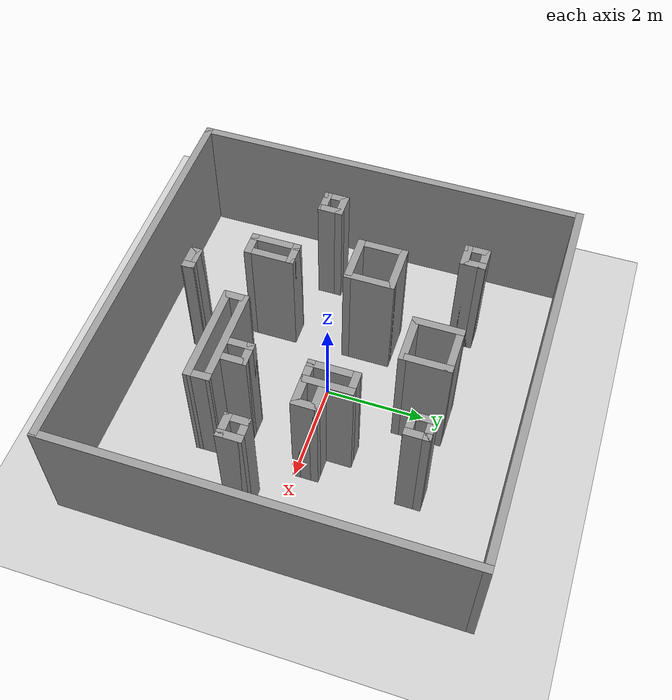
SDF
<sdf version="1.6">
 <world name="default">
  <light name="sun" type="directional">
   <pose>0 0 10 0 -0 0</pose>
   <diffuse>0.8 0.8 0.8 1</diffuse>
   <specular>0.1 0.1 0.1 1</specular>
   <attenuation>
    <range>1000</range>
    <constant>0.9</constant>
    <linear>0.01</linear>
    <quadratic>0.001</quadratic>
   </attenuation>
   <direction>-0.5 0.5 -1</direction>
  </light>
  <model name="ground_plane">
   <static>1</static>
   <link name="link">
    <collision name="collision">
     <geometry><plane><normal>0 0 1</normal><size>100 100</size></plane></geometry>
     <surface><friction><ode><mu>100</mu><mu2>50</mu2></ode></friction></surface>
    </collision>
    <visual name="visual">
     <cast_shadows>0</cast_shadows>
     <geometry><plane><normal>0 0 1</normal><size>100 100</size></plane></geometry>
     <material>
      <script><uri>file://media/materials/scripts/gazebo.material</uri><name>Gazebo/Grey</name></script>
     </material>
    </visual>
   </link>
  </model>
  <gravity>0 0 -9.8</gravity>
  <magnetic_field>6e-06 2.3e-05 -4.2e-05</magnetic_field>
  <atmosphere type="adiabatic"/>
  <physics name="default_physics" default="0" type="ode">
   <max_step_size>0.001</max_step_size>
   <real_time_factor>1</real_time_factor>
   <real_time_update_rate>1000</real_time_update_rate>
  </physics>
  <scene><ambient>0.4 0.4 0.4 1</ambient><background>0.7 0.7 0.7 1</background><shadows>1</shadows></scene>
  <spherical_coordinates>
   <surface_model>EARTH_WGS84</surface_model>
   <latitude_deg>0</latitude_deg>
   <longitude_deg>0</longitude_deg>
   <elevation>0</elevation>
   <heading_deg>0</heading_deg>
  </spherical_coordinates>
  <model name="maze2">
   <link name="Wall_10">
    <collision name="Wall_10_Collision">
     <geometry><box><size>1 0.15 2.5</size></box></geometry>
     <pose>0 0 1.25 0 -0 0</pose>
    </collision>
    <visual name="Wall_10_Visual">
     <pose>0 0 1.25 0 -0 0</pose>
     <geometry><box><size>1 0.15 2.5</size></box></geometry>
     <material>
      <script><uri>file://media/materials/scripts/gazebo.material</uri><name>Gazebo/Grey</name></script>
      <ambient>1 1 1 1</ambient>
     </material>
     <meta><layer>0</layer></meta>
    </visual>
    <pose>-1.407 -1.51762 0 0 0 -1.5708</pose>
   </link>
   <link name="Wall_12">
    <collision name="Wall_12_Collision">
     <geometry><box><size>0.5 0.15 2.5</size></box></geometry>
     <pose>0 0 1.25 0 -0 0</pose>
    </collision>
    <visual name="Wall_12_Visual">
     <pose>0 0 1.25 0 -0 0</pose>
     <geometry><box><size>0.5 0.15 2.5</size></box></geometry>
     <material>
      <script><uri>file://media/materials/scripts/gazebo.material</uri><name>Gazebo/Grey</name></script>
      <ambient>1 1 1 1</ambient>
     </material>
     <meta><layer>0</layer></meta>
    </visual>
    <pose>-1.232 -1.09262 0 0 -0 0</pose>
   </link>
   <link name="Wall_13">
    <collision name="Wall_13_Collision">
     <geometry><box><size>1 0.15 2.5</size></box></geometry>
     <pose>0 0 1.25 0 -0 0</pose>
    </collision>
    <visual name="Wall_13_Visual">
     <pose>0 0 1.25 0 -0 0</pose>
     <geometry><box><size>1 0.15 2.5</size></box></geometry>
     <material>
      <script><uri>file://media/materials/scripts/gazebo.material</uri><name>Gazebo/Grey</name></script>
      <ambient>1 1 1 1</ambient>
     </material>
     <meta><layer>0</layer></meta>
    </visual>
    <pose>-1.057 -1.51762 0 0 0 -1.5708</pose>
   </link>
   <link name="Wall_14">
    <collision name="Wall_14_Collision">
     <geometry><box><size>0.5 0.15 2.5</size></box></geometry>
     <pose>0 0 1.25 0 -0 0</pose>
    </collision>
    <visual name="Wall_14_Visual">
     <pose>0 0 1.25 0 -0 0</pose>
     <geometry><box><size>0.5 0.15 2.5</size></box></geometry>
     <material>
      <script><uri>file://media/materials/scripts/gazebo.material</uri><name>Gazebo/Grey</name></script>
      <ambient>1 1 1 1</ambient>
     </material>
     <meta><layer>0</layer></meta>
    </visual>
    <pose>-1.232 -1.94262 0 0 -0 3.14159</pose>
   </link>
   <link name="Wall_16">
    <collision name="Wall_16_Collision">
     <geometry><box><size>0.5 0.15 2.5</size></box></geometry>
     <pose>0 0 1.25 0 -0 0</pose>
    </collision>
    <visual name="Wall_16_Visual">
     <pose>0 0 1.25 0 -0 0</pose>
     <geometry><box><size>0.5 0.15 2.5</size></box></geometry>
     <material>
      <script><uri>file://media/materials/scripts/gazebo.material</uri><name>Gazebo/Grey</name></script>
      <ambient>1 1 1 1</ambient>
     </material>
     <meta><layer>0</layer></meta>
    </visual>
    <pose>0.091705 -1.76088 0 0 0 -1.5708</pose>
   </link>
   <link name="Wall_17">
    <collision name="Wall_17_Collision">
     <geometry><box><size>2.00655 0.15 2.5</size></box></geometry>
     <pose>0 0 1.25 0 -0 0</pose>
    </collision>
    <visual name="Wall_17_Visual">
     <pose>0 0 1.25 0 -0 0</pose>
     <geometry><box><size>2.00655 0.15 2.5</size></box></geometry>
     <material>
      <script><uri>file://media/materials/scripts/gazebo.material</uri><name>Gazebo/Grey</name></script>
      <ambient>1 1 1 1</ambient>
     </material>
     <meta><layer>0</layer></meta>
    </visual>
    <pose>1.01997 -1.93915 0 0 0 -0.003522</pose>
   </link>
   <link name="Wall_20">
    <collision name="Wall_20_Collision">
     <geometry><box><size>2 0.15 2.5</size></box></geometry>
     <pose>0 0 1.25 0 -0 0</pose>
    </collision>
    <visual name="Wall_20_Visual">
     <pose>0 0 1.25 0 -0 0</pose>
     <geometry><box><size>2 0.15 2.5</size></box></geometry>
     <material>
      <script><uri>file://media/materials/scripts/gazebo.material</uri><name>Gazebo/Grey</name></script>
      <ambient>1 1 1 1</ambient>
     </material>
     <meta><layer>0</layer></meta>
    </visual>
    <pose>1.0167 -1.58588 0 0 -0 0</pose>
   </link>
   <link name="Wall_21">
    <collision name="Wall_21_Collision">
     <geometry><box><size>0.506598 0.15 2.5</size></box></geometry>
     <pose>0 0 1.25 0 -0 0</pose>
    </collision>
    <visual name="Wall_21_Visual">
     <pose>0 0 1.25 0 -0 0</pose>
     <geometry><box><size>0.506598 0.15 2.5</size></box></geometry>
     <material>
      <script><uri>file://media/materials/scripts/gazebo.material</uri><name>Gazebo/Grey</name></script>
      <ambient>1 1 1 1</ambient>
     </material>
     <meta><layer>0</layer></meta>
    </visual>
    <pose>1.94497 -1.76415 0 0 0 -1.55246</pose>
   </link>
   <link name="Wall_23">
    <collision name="Wall_23_Collision">
     <geometry><box><size>0.5 0.15 2.5</size></box></geometry>
     <pose>0 0 1.25 0 -0 0</pose>
    </collision>
    <visual name="Wall_23_Visual">
     <pose>0 0 1.25 0 -0 0</pose>
     <geometry><box><size>0.5 0.15 2.5</size></box></geometry>
     <material>
      <script><uri>file://media/materials/scripts/gazebo.material</uri><name>Gazebo/Grey</name></script>
      <ambient>1 1 1 1</ambient>
     </material>
     <meta><layer>0</layer></meta>
    </visual>
    <pose>1.08744 -1.26693 0 0 0 -1.5708</pose>
   </link>
   <link name="Wall_25">
    <collision name="Wall_25_Collision">
     <geometry><box><size>0.5 0.15 2.5</size></box></geometry>
     <pose>0 0 1.25 0 -0 0</pose>
    </collision>
    <visual name="Wall_25_Visual">
     <pose>0 0 1.25 0 -0 0</pose>
     <geometry><box><size>0.5 0.15 2.5</size></box></geometry>
     <material>
      <script><uri>file://media/materials/scripts/gazebo.material</uri><name>Gazebo/Grey</name></script>
      <ambient>1 1 1 1</ambient>
     </material>
     <meta><layer>0</layer></meta>
    </visual>
    <pose>1.26244 -1.09193 0 0 -0 0</pose>
   </link>
   <link name="Wall_26">
    <collision name="Wall_26_Collision">
     <geometry><box><size>0.5 0.15 2.5</size></box></geometry>
     <pose>0 0 1.25 0 -0 0</pose>
    </collision>
    <visual name="Wall_26_Visual">
     <pose>0 0 1.25 0 -0 0</pose>
     <geometry><box><size>0.5 0.15 2.5</size></box></geometry>
     <material>
      <script><uri>file://media/materials/scripts/gazebo.material</uri><name>Gazebo/Grey</name></script>
      <ambient>1 1 1 1</ambient>
     </material>
     <meta><layer>0</layer></meta>
    </visual>
    <pose>1.43744 -1.26693 0 0 0 -1.5708</pose>
   </link>
   <link name="Wall_28">
    <collision name="Wall_28_Collision">
     <geometry><box><size>0.25 0.15 2.5</size></box></geometry>
     <pose>0 0 1.25 0 -0 0</pose>
    </collision>
    <visual name="Wall_28_Visual">
     <pose>0 0 1.25 0 -0 0</pose>
     <geometry><box><size>0.25 0.15 2.5</size></box></geometry>
     <material>
      <script><uri>file://media/materials/scripts/gazebo.material</uri><name>Gazebo/Grey</name></script>
      <ambient>1 1 1 1</ambient>
     </material>
     <meta><layer>0</layer></meta>
    </visual>
    <pose>-0.707653 -2.8961 0 0 0 -1.5708</pose>
   </link>
   <link name="Wall_30">
    <collision name="Wall_30_Collision">
     <geometry><box><size>0.5 0.15 2.5</size></box></geometry>
     <pose>0 0 1.25 0 -0 0</pose>
    </collision>
    <visual name="Wall_30_Visual">
     <pose>0 0 1.25 0 -0 0</pose>
     <geometry><box><size>0.5 0.15 2.5</size></box></geometry>
     <material>
      <script><uri>file://media/materials/scripts/gazebo.material</uri><name>Gazebo/Grey</name></script>
      <ambient>1 1 1 1</ambient>
     </material>
     <meta><layer>0</layer></meta>
    </visual>
    <pose>-0.532653 -2.8461 0 0 -0 0</pose>
   </link>
   <link name="Wall_31">
    <collision name="Wall_31_Collision">
     <geometry><box><size>0.25 0.15 2.5</size></box></geometry>
     <pose>0 0 1.25 0 -0 0</pose>
    </collision>
    <visual name="Wall_31_Visual">
     <pose>0 0 1.25 0 -0 0</pose>
     <geometry><box><size>0.25 0.15 2.5</size></box></geometry>
     <material>
      <script><uri>file://media/materials/scripts/gazebo.material</uri><name>Gazebo/Grey</name></script>
      <ambient>1 1 1 1</ambient>
     </material>
     <meta><layer>0</layer></meta>
    </visual>
    <pose>-0.357653 -2.8961 0 0 0 -1.5708</pose>
   </link>
   <link name="Wall_32">
    <collision name="Wall_32_Collision">
     <geometry><box><size>0.5 0.15 2.5</size></box></geometry>
     <pose>0 0 1.25 0 -0 0</pose>
    </collision>
    <visual name="Wall_32_Visual">
     <pose>0 0 1.25 0 -0 0</pose>
     <geometry><box><size>0.5 0.15 2.5</size></box></geometry>
     <material>
      <script><uri>file://media/materials/scripts/gazebo.material</uri><name>Gazebo/Grey</name></script>
      <ambient>1 1 1 1</ambient>
     </material>
     <meta><layer>0</layer></meta>
    </visual>
    <pose>-0.532653 -2.9461 0 0 -0 3.14159</pose>
   </link>
   <link name="Wall_34">
    <collision name="Wall_34_Collision">
     <geometry><box><size>0.5 0.15 2.5</size></box></geometry>
     <pose>0 0 1.25 0 -0 0</pose>
    </collision>
    <visual name="Wall_34_Visual">
     <pose>0 0 1.25 0 -0 0</pose>
     <geometry><box><size>0.5 0.15 2.5</size></box></geometry>
     <material>
      <script><uri>file://media/materials/scripts/gazebo.material</uri><name>Gazebo/Grey</name></script>
      <ambient>1 1 1 1</ambient>
     </material>
     <meta><layer>0</layer></meta>
    </visual>
    <pose>2.59343 -0.768966 0 0 0 -1.5708</pose>
   </link>
   <link name="Wall_36">
    <collision name="Wall_36_Collision">
     <geometry><box><size>0.5 0.15 2.5</size></box></geometry>
     <pose>0 0 1.25 0 -0 0</pose>
    </collision>
    <visual name="Wall_36_Visual">
     <pose>0 0 1.25 0 -0 0</pose>
     <geometry><box><size>0.5 0.15 2.5</size></box></geometry>
     <material>
      <script><uri>file://media/materials/scripts/gazebo.material</uri><name>Gazebo/Grey</name></script>
      <ambient>1 1 1 1</ambient>
     </material>
     <meta><layer>0</layer></meta>
    </visual>
    <pose>2.76843 -0.943966 0 0 -0 0</pose>
   </link>
   <link name="Wall_37">
    <collision name="Wall_37_Collision">
     <geometry><box><size>0.5 0.15 2.5</size></box></geometry>
     <pose>0 0 1.25 0 -0 0</pose>
    </collision>
    <visual name="Wall_37_Visual">
     <pose>0 0 1.25 0 -0 0</pose>
     <geometry><box><size>0.5 0.15 2.5</size></box></geometry>
     <material>
      <script><uri>file://media/materials/scripts/gazebo.material</uri><name>Gazebo/Grey</name></script>
      <ambient>1 1 1 1</ambient>
     </material>
     <meta><layer>0</layer></meta>
    </visual>
    <pose>2.94343 -0.768966 0 0 -0 1.5708</pose>
   </link>
   <link name="Wall_38">
    <collision name="Wall_38_Collision">
     <geometry><box><size>0.5 0.15 2.5</size></box></geometry>
     <pose>0 0 1.25 0 -0 0</pose>
    </collision>
    <visual name="Wall_38_Visual">
     <pose>0 0 1.25 0 -0 0</pose>
     <geometry><box><size>0.5 0.15 2.5</size></box></geometry>
     <material>
      <script><uri>file://media/materials/scripts/gazebo.material</uri><name>Gazebo/Grey</name></script>
      <ambient>1 1 1 1</ambient>
     </material>
     <meta><layer>0</layer></meta>
    </visual>
    <pose>2.76843 -0.593966 0 0 -0 3.14159</pose>
   </link>
   <link name="Wall_40">
    <collision name="Wall_40_Collision">
     <geometry><box><size>0.5 0.15 2.5</size></box></geometry>
     <pose>0 0 1.25 0 -0 0</pose>
    </collision>
    <visual name="Wall_40_Visual">
     <pose>0 0 1.25 0 -0 0</pose>
     <geometry><box><size>0.5 0.15 2.5</size></box></geometry>
     <material>
      <script><uri>file://media/materials/scripts/gazebo.material</uri><name>Gazebo/Grey</name></script>
      <ambient>1 1 1 1</ambient>
     </material>
     <meta><layer>0</layer></meta>
    </visual>
    <pose>-2.9082 -0.772864 0 0 0 -1.5708</pose>
   </link>
   <link name="Wall_42">
    <collision name="Wall_42_Collision">
     <geometry><box><size>0.5 0.15 2.5</size></box></geometry>
     <pose>0 0 1.25 0 -0 0</pose>
    </collision>
    <visual name="Wall_42_Visual">
     <pose>0 0 1.25 0 -0 0</pose>
     <geometry><box><size>0.5 0.15 2.5</size></box></geometry>
     <material>
      <script><uri>file://media/materials/scripts/gazebo.material</uri><name>Gazebo/Grey</name></script>
      <ambient>1 1 1 1</ambient>
     </material>
     <meta><layer>0</layer></meta>
    </visual>
    <pose>-2.7332 -0.947864 0 0 -0 0</pose>
   </link>
   <link name="Wall_43">
    <collision name="Wall_43_Collision">
     <geometry><box><size>0.5 0.15 2.5</size></box></geometry>
     <pose>0 0 1.25 0 -0 0</pose>
    </collision>
    <visual name="Wall_43_Visual">
     <pose>0 0 1.25 0 -0 0</pose>
     <geometry><box><size>0.5 0.15 2.5</size></box></geometry>
     <material>
      <script><uri>file://media/materials/scripts/gazebo.material</uri><name>Gazebo/Grey</name></script>
      <ambient>1 1 1 1</ambient>
     </material>
     <meta><layer>0</layer></meta>
    </visual>
    <pose>-2.5582 -0.772864 0 0 -0 1.5708</pose>
   </link>
   <link name="Wall_44">
    <collision name="Wall_44_Collision">
     <geometry><box><size>0.5 0.15 2.5</size></box></geometry>
     <pose>0 0 1.25 0 -0 0</pose>
    </collision>
    <visual name="Wall_44_Visual">
     <pose>0 0 1.25 0 -0 0</pose>
     <geometry><box><size>0.5 0.15 2.5</size></box></geometry>
     <material>
      <script><uri>file://media/materials/scripts/gazebo.material</uri><name>Gazebo/Grey</name></script>
      <ambient>1 1 1 1</ambient>
     </material>
     <meta><layer>0</layer></meta>
    </visual>
    <pose>-2.7332 -0.597864 0 0 -0 3.14159</pose>
   </link>
   <link name="Wall_46">
    <collision name="Wall_46_Collision">
     <geometry><box><size>1 0.15 2.5</size></box></geometry>
     <pose>0 0 1.25 0 -0 0</pose>
    </collision>
    <visual name="Wall_46_Visual">
     <pose>0 0 1.25 0 -0 0</pose>
     <geometry><box><size>1 0.15 2.5</size></box></geometry>
     <material>
      <script><uri>file://media/materials/scripts/gazebo.material</uri><name>Gazebo/Grey</name></script>
      <ambient>1 1 1 1</ambient>
     </material>
     <meta><layer>0</layer></meta>
    </visual>
    <pose>-1.90995 0.479598 0 0 0 -1.5708</pose>
   </link>
   <link name="Wall_48">
    <collision name="Wall_48_Collision">
     <geometry><box><size>1 0.15 2.5</size></box></geometry>
     <pose>0 0 1.25 0 -0 0</pose>
    </collision>
    <visual name="Wall_48_Visual">
     <pose>0 0 1.25 0 -0 0</pose>
     <geometry><box><size>1 0.15 2.5</size></box></geometry>
     <material>
      <script><uri>file://media/materials/scripts/gazebo.material</uri><name>Gazebo/Grey</name></script>
      <ambient>1 1 1 1</ambient>
     </material>
     <meta><layer>0</layer></meta>
    </visual>
    <pose>-1.48495 0.904598 0 0 -0 0</pose>
   </link>
   <link name="Wall_49">
    <collision name="Wall_49_Collision">
     <geometry><box><size>1 0.15 2.5</size></box></geometry>
     <pose>0 0 1.25 0 -0 0</pose>
    </collision>
    <visual name="Wall_49_Visual">
     <pose>0 0 1.25 0 -0 0</pose>
     <geometry><box><size>1 0.15 2.5</size></box></geometry>
     <material>
      <script><uri>file://media/materials/scripts/gazebo.material</uri><name>Gazebo/Grey</name></script>
      <ambient>1 1 1 1</ambient>
     </material>
     <meta><layer>0</layer></meta>
    </visual>
    <pose>-1.05995 0.479598 0 0 0 -1.5708</pose>
   </link>
   <link name="Wall_50">
    <collision name="Wall_50_Collision">
     <geometry><box><size>1 0.15 2.5</size></box></geometry>
     <pose>0 0 1.25 0 -0 0</pose>
    </collision>
    <visual name="Wall_50_Visual">
     <pose>0 0 1.25 0 -0 0</pose>
     <geometry><box><size>1 0.15 2.5</size></box></geometry>
     <material>
      <script><uri>file://media/materials/scripts/gazebo.material</uri><name>Gazebo/Grey</name></script>
      <ambient>1 1 1 1</ambient>
     </material>
     <meta><layer>0</layer></meta>
    </visual>
    <pose>-1.48495 0.054598 0 0 -0 3.14159</pose>
   </link>
   <link name="Wall_52">
    <collision name="Wall_52_Collision">
     <geometry><box><size>1 0.15 2.5</size></box></geometry>
     <pose>0 0 1.25 0 -0 0</pose>
    </collision>
    <visual name="Wall_52_Visual">
     <pose>0 0 1.25 0 -0 0</pose>
     <geometry><box><size>1 0.15 2.5</size></box></geometry>
     <material>
      <script><uri>file://media/materials/scripts/gazebo.material</uri><name>Gazebo/Grey</name></script>
      <ambient>1 1 1 1</ambient>
     </material>
     <meta><layer>0</layer></meta>
    </visual>
    <pose>1.09281 0.477448 0 0 0 -1.5708</pose>
   </link>
   <link name="Wall_54">
    <collision name="Wall_54_Collision">
     <geometry><box><size>1 0.15 2.5</size></box></geometry>
     <pose>0 0 1.25 0 -0 0</pose>
    </collision>
    <visual name="Wall_54_Visual">
     <pose>0 0 1.25 0 -0 0</pose>
     <geometry><box><size>1 0.15 2.5</size></box></geometry>
     <material>
      <script><uri>file://media/materials/scripts/gazebo.material</uri><name>Gazebo/Grey</name></script>
      <ambient>1 1 1 1</ambient>
     </material>
     <meta><layer>0</layer></meta>
    </visual>
    <pose>1.51781 0.052448 0 0 -0 0</pose>
   </link>
   <link name="Wall_55">
    <collision name="Wall_55_Collision">
     <geometry><box><size>0.5 0.15 2.5</size></box></geometry>
     <pose>0 0 1.25 0 -0 0</pose>
    </collision>
    <visual name="Wall_55_Visual">
     <pose>0 0 1.25 0 -0 0</pose>
     <geometry><box><size>0.5 0.15 2.5</size></box></geometry>
     <material>
      <script><uri>file://media/materials/scripts/gazebo.material</uri><name>Gazebo/Grey</name></script>
      <ambient>1 1 1 1</ambient>
     </material>
     <meta><layer>0</layer></meta>
    </visual>
    <pose>1.94281 0.227448 0 0 -0 1.5708</pose>
   </link>
   <link name="Wall_56">
    <collision name="Wall_56_Collision">
     <geometry><box><size>0.5 0.15 2.5</size></box></geometry>
     <pose>0 0 1.25 0 -0 0</pose>
    </collision>
    <visual name="Wall_56_Visual">
     <pose>0 0 1.25 0 -0 0</pose>
     <geometry><box><size>0.5 0.15 2.5</size></box></geometry>
     <material>
      <script><uri>file://media/materials/scripts/gazebo.material</uri><name>Gazebo/Grey</name></script>
      <ambient>1 1 1 1</ambient>
     </material>
     <meta><layer>0</layer></meta>
    </visual>
    <pose>1.76781 0.402448 0 0 -0 3.14159</pose>
   </link>
   <link name="Wall_58">
    <collision name="Wall_58_Collision">
     <geometry><box><size>0.5 0.15 2.5</size></box></geometry>
     <pose>0 0 1.25 0 -0 0</pose>
    </collision>
    <visual name="Wall_58_Visual">
     <pose>0 0 1.25 0 -0 0</pose>
     <geometry><box><size>0.5 0.15 2.5</size></box></geometry>
     <material>
      <script><uri>file://media/materials/scripts/gazebo.material</uri><name>Gazebo/Grey</name></script>
      <ambient>1 1 1 1</ambient>
     </material>
     <meta><layer>0</layer></meta>
    </visual>
    <pose>1.26781 0.902448 0 0 -0 0</pose>
   </link>
   <link name="Wall_59">
    <collision name="Wall_59_Collision">
     <geometry><box><size>1 0.15 2.5</size></box></geometry>
     <pose>0 0 1.25 0 -0 0</pose>
    </collision>
    <visual name="Wall_59_Visual">
     <pose>0 0 1.25 0 -0 0</pose>
     <geometry><box><size>1 0.15 2.5</size></box></geometry>
     <material>
      <script><uri>file://media/materials/scripts/gazebo.material</uri><name>Gazebo/Grey</name></script>
      <ambient>1 1 1 1</ambient>
     </material>
     <meta><layer>0</layer></meta>
    </visual>
    <pose>1.44281 0.477448 0 0 0 -1.5708</pose>
   </link>
   <link name="Wall_61">
    <collision name="Wall_61_Collision">
     <geometry><box><size>0.5 0.15 2.5</size></box></geometry>
     <pose>0 0 1.25 0 -0 0</pose>
    </collision>
    <visual name="Wall_61_Visual">
     <pose>0 0 1.25 0 -0 0</pose>
     <geometry><box><size>0.5 0.15 2.5</size></box></geometry>
     <material>
      <script><uri>file://media/materials/scripts/gazebo.material</uri><name>Gazebo/Grey</name></script>
      <ambient>1 1 1 1</ambient>
     </material>
     <meta><layer>0</layer></meta>
    </visual>
    <pose>-2.4122 2.23255 0 0 0 -1.5708</pose>
   </link>
   <link name="Wall_63">
    <collision name="Wall_63_Collision">
     <geometry><box><size>0.5 0.15 2.5</size></box></geometry>
     <pose>0 0 1.25 0 -0 0</pose>
    </collision>
    <visual name="Wall_63_Visual">
     <pose>0 0 1.25 0 -0 0</pose>
     <geometry><box><size>0.5 0.15 2.5</size></box></geometry>
     <material>
      <script><uri>file://media/materials/scripts/gazebo.material</uri><name>Gazebo/Grey</name></script>
      <ambient>1 1 1 1</ambient>
     </material>
     <meta><layer>0</layer></meta>
    </visual>
    <pose>-2.2372 2.05755 0 0 -0 0</pose>
   </link>
   <link name="Wall_66">
    <collision name="Wall_66_Collision">
     <geometry><box><size>0.5 0.15 2.5</size></box></geometry>
     <pose>0 0 1.25 0 -0 0</pose>
    </collision>
    <visual name="Wall_66_Visual">
     <pose>0 0 1.25 0 -0 0</pose>
     <geometry><box><size>0.5 0.15 2.5</size></box></geometry>
     <material>
      <script><uri>file://media/materials/scripts/gazebo.material</uri><name>Gazebo/Grey</name></script>
      <ambient>1 1 1 1</ambient>
     </material>
     <meta><layer>0</layer></meta>
    </visual>
    <pose>-2.0622 2.23255 0 0 -0 1.5708</pose>
   </link>
   <link name="Wall_67">
    <collision name="Wall_67_Collision">
     <geometry><box><size>0.5 0.15 2.5</size></box></geometry>
     <pose>0 0 1.25 0 -0 0</pose>
    </collision>
    <visual name="Wall_67_Visual">
     <pose>0 0 1.25 0 -0 0</pose>
     <geometry><box><size>0.5 0.15 2.5</size></box></geometry>
     <material>
      <script><uri>file://media/materials/scripts/gazebo.material</uri><name>Gazebo/Grey</name></script>
      <ambient>1 1 1 1</ambient>
     </material>
     <meta><layer>0</layer></meta>
    </visual>
    <pose>-2.2372 2.40755 0 0 -0 3.14159</pose>
   </link>
   <link name="Wall_69">
    <collision name="Wall_69_Collision">
     <geometry><box><size>1 0.15 2.5</size></box></geometry>
     <pose>0 0 1.25 0 -0 0</pose>
    </collision>
    <visual name="Wall_69_Visual">
     <pose>0 0 1.25 0 -0 0</pose>
     <geometry><box><size>1 0.15 2.5</size></box></geometry>
     <material>
      <script><uri>file://media/materials/scripts/gazebo.material</uri><name>Gazebo/Grey</name></script>
      <ambient>1 1 1 1</ambient>
     </material>
     <meta><layer>0</layer></meta>
    </visual>
    <pose>-0.408459 1.98255 0 0 0 -1.5708</pose>
   </link>
   <link name="Wall_71">
    <collision name="Wall_71_Collision">
     <geometry><box><size>1 0.15 2.5</size></box></geometry>
     <pose>0 0 1.25 0 -0 0</pose>
    </collision>
    <visual name="Wall_71_Visual">
     <pose>0 0 1.25 0 -0 0</pose>
     <geometry><box><size>1 0.15 2.5</size></box></geometry>
     <material>
      <script><uri>file://media/materials/scripts/gazebo.material</uri><name>Gazebo/Grey</name></script>
      <ambient>1 1 1 1</ambient>
     </material>
     <meta><layer>0</layer></meta>
    </visual>
    <pose>0.016541 2.40755 0 0 -0 0</pose>
   </link>
   <link name="Wall_72">
    <collision name="Wall_72_Collision">
     <geometry><box><size>1 0.15 2.5</size></box></geometry>
     <pose>0 0 1.25 0 -0 0</pose>
    </collision>
    <visual name="Wall_72_Visual">
     <pose>0 0 1.25 0 -0 0</pose>
     <geometry><box><size>1 0.15 2.5</size></box></geometry>
     <material>
      <script><uri>file://media/materials/scripts/gazebo.material</uri><name>Gazebo/Grey</name></script>
      <ambient>1 1 1 1</ambient>
     </material>
     <meta><layer>0</layer></meta>
    </visual>
    <pose>0.441541 1.98255 0 0 0 -1.5708</pose>
   </link>
   <link name="Wall_73">
    <collision name="Wall_73_Collision">
     <geometry><box><size>1 0.15 2.5</size></box></geometry>
     <pose>0 0 1.25 0 -0 0</pose>
    </collision>
    <visual name="Wall_73_Visual">
     <pose>0 0 1.25 0 -0 0</pose>
     <geometry><box><size>1 0.15 2.5</size></box></geometry>
     <material>
      <script><uri>file://media/materials/scripts/gazebo.material</uri><name>Gazebo/Grey</name></script>
      <ambient>1 1 1 1</ambient>
     </material>
     <meta><layer>0</layer></meta>
    </visual>
    <pose>0.016541 1.55755 0 0 -0 3.14159</pose>
   </link>
   <link name="Wall_75">
    <collision name="Wall_75_Collision">
     <geometry><box><size>0.5 0.15 2.5</size></box></geometry>
     <pose>0 0 1.25 0 -0 0</pose>
    </collision>
    <visual name="Wall_75_Visual">
     <pose>0 0 1.25 0 -0 0</pose>
     <geometry><box><size>0.5 0.15 2.5</size></box></geometry>
     <material>
      <script><uri>file://media/materials/scripts/gazebo.material</uri><name>Gazebo/Grey</name></script>
      <ambient>1 1 1 1</ambient>
     </material>
     <meta><layer>0</layer></meta>
    </visual>
    <pose>1.57649 2.23255 0 0 0 -1.5708</pose>
   </link>
   <link name="Wall_77">
    <collision name="Wall_77_Collision">
     <geometry><box><size>0.5 0.15 2.5</size></box></geometry>
     <pose>0 0 1.25 0 -0 0</pose>
    </collision>
    <visual name="Wall_77_Visual">
     <pose>0 0 1.25 0 -0 0</pose>
     <geometry><box><size>0.5 0.15 2.5</size></box></geometry>
     <material>
      <script><uri>file://media/materials/scripts/gazebo.material</uri><name>Gazebo/Grey</name></script>
      <ambient>1 1 1 1</ambient>
     </material>
     <meta><layer>0</layer></meta>
    </visual>
    <pose>1.75149 2.05755 0 0 -0 0</pose>
   </link>
   <link name="Wall_78">
    <collision name="Wall_78_Collision">
     <geometry><box><size>0.5 0.15 2.5</size></box></geometry>
     <pose>0 0 1.25 0 -0 0</pose>
    </collision>
    <visual name="Wall_78_Visual">
     <pose>0 0 1.25 0 -0 0</pose>
     <geometry><box><size>0.5 0.15 2.5</size></box></geometry>
     <material>
      <script><uri>file://media/materials/scripts/gazebo.material</uri><name>Gazebo/Grey</name></script>
      <ambient>1 1 1 1</ambient>
     </material>
     <meta><layer>0</layer></meta>
    </visual>
    <pose>1.92649 2.23255 0 0 -0 1.5708</pose>
   </link>
   <link name="Wall_79">
    <collision name="Wall_79_Collision">
     <geometry><box><size>0.5 0.15 2.5</size></box></geometry>
     <pose>0 0 1.25 0 -0 0</pose>
    </collision>
    <visual name="Wall_79_Visual">
     <pose>0 0 1.25 0 -0 0</pose>
     <geometry><box><size>0.5 0.15 2.5</size></box></geometry>
     <material>
      <script><uri>file://media/materials/scripts/gazebo.material</uri><name>Gazebo/Grey</name></script>
      <ambient>1 1 1 1</ambient>
     </material>
     <meta><layer>0</layer></meta>
    </visual>
    <pose>1.75149 2.40755 0 0 -0 3.14159</pose>
   </link>
   <link name="Wall_81">
    <collision name="Wall_81_Collision">
     <geometry><box><size>8 0.15 2.5</size></box></geometry>
     <pose>0 0 1.25 0 -0 0</pose>
    </collision>
    <visual name="Wall_81_Visual">
     <pose>0 0 1.25 0 -0 0</pose>
     <geometry><box><size>8 0.15 2.5</size></box></geometry>
     <material>
      <script><uri>file://media/materials/scripts/gazebo.material</uri><name>Gazebo/Grey</name></script>
      <ambient>1 1 1 1</ambient>
     </material>
     <meta><layer>0</layer></meta>
    </visual>
    <pose>-3.925 0 0 0 0 -1.5708</pose>
   </link>
   <link name="Wall_82">
    <collision name="Wall_82_Collision">
     <geometry><box><size>8 0.15 2.5</size></box></geometry>
     <pose>0 0 1.25 0 -0 0</pose>
    </collision>
    <visual name="Wall_82_Visual">
     <pose>0 0 1.25 0 -0 0</pose>
     <geometry><box><size>8 0.15 2.5</size></box></geometry>
     <material>
      <script><uri>file://media/materials/scripts/gazebo.material</uri><name>Gazebo/Grey</name></script>
      <ambient>1 1 1 1</ambient>
     </material>
     <meta><layer>0</layer></meta>
    </visual>
    <pose>0 -3.925 0 0 -0 0</pose>
   </link>
   <link name="Wall_83">
    <collision name="Wall_83_Collision">
     <geometry><box><size>8 0.15 2.5</size></box></geometry>
     <pose>0 0 1.25 0 -0 0</pose>
    </collision>
    <visual name="Wall_83_Visual">
     <pose>0 0 1.25 0 -0 0</pose>
     <geometry><box><size>8 0.15 2.5</size></box></geometry>
     <material>
      <script><uri>file://media/materials/scripts/gazebo.material</uri><name>Gazebo/Grey</name></script>
      <ambient>1 1 1 1</ambient>
     </material>
     <meta><layer>0</layer></meta>
    </visual>
    <pose>3.925 0 0 0 -0 1.5708</pose>
   </link>
   <link name="Wall_84">
    <collision name="Wall_84_Collision">
     <geometry><box><size>8 0.15 2.5</size></box></geometry>
     <pose>0 0 1.25 0 -0 0</pose>
    </collision>
    <visual name="Wall_84_Visual">
     <pose>0 0 1.25 0 -0 0</pose>
     <geometry><box><size>8 0.15 2.5</size></box></geometry>
     <material>
      <script><uri>file://media/materials/scripts/gazebo.material</uri><name>Gazebo/Grey</name></script>
      <ambient>1 1 1 1</ambient>
     </material>
     <meta><layer>0</layer></meta>
    </visual>
    <pose>0 3.925 0 0 -0 3.14159</pose>
   </link>
   <static>1</static>
  </model>
 </world>
</sdf>
